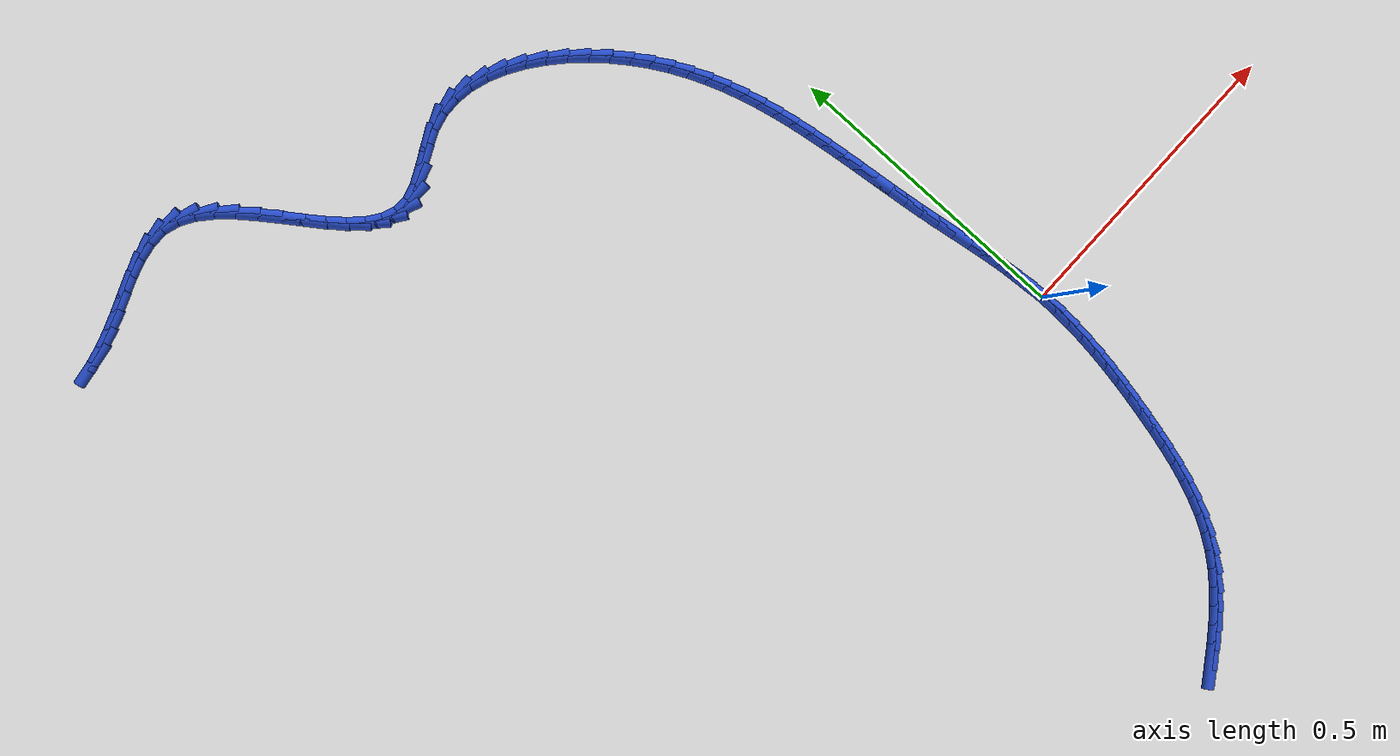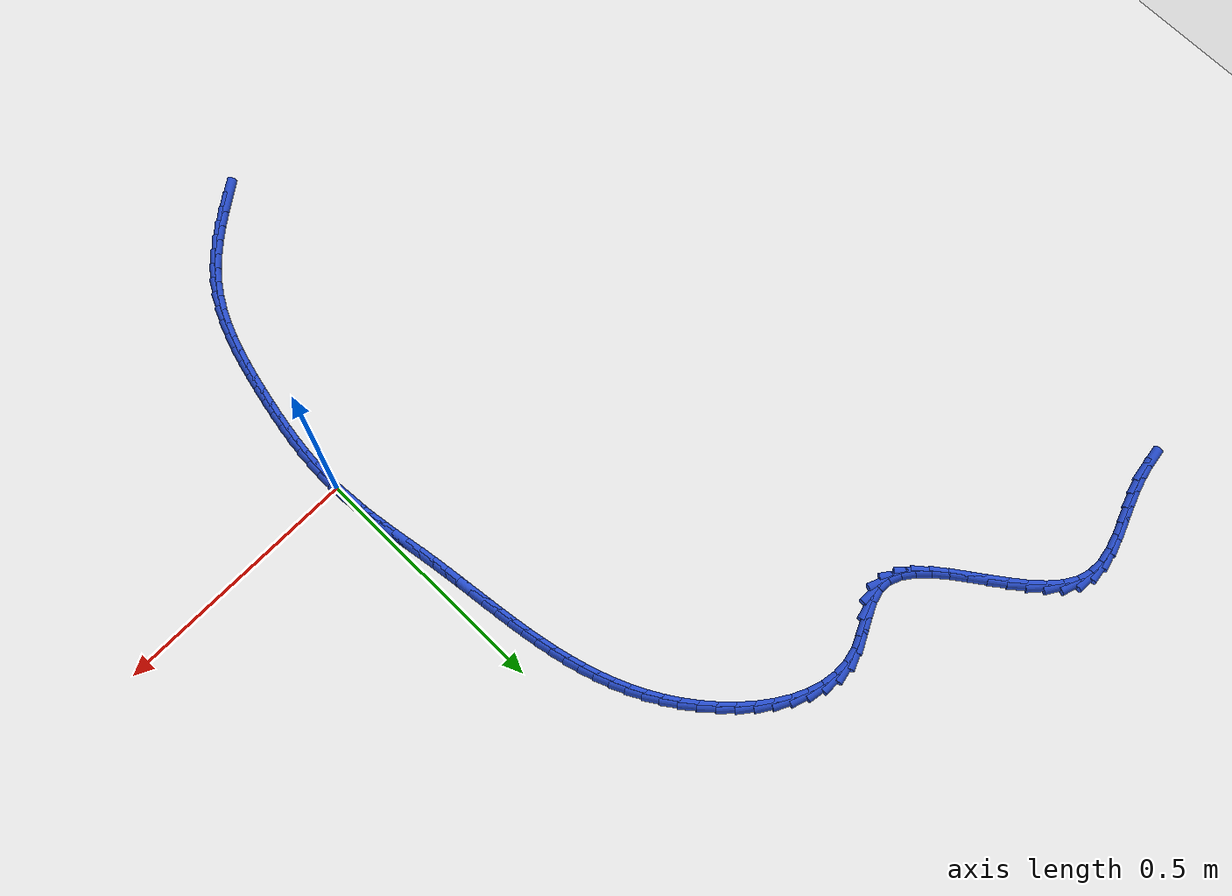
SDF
<sdf version="1.6">
 <world name="default">
  <model name="ground_plane">
   <static>1</static>
   <link name="link">
    <collision name="collision">
     <geometry><plane><normal>0 0 1</normal><size>100 100</size></plane></geometry>
     <surface><friction><ode><mu>100</mu><mu2>50</mu2></ode></friction></surface>
    </collision>
    <visual name="visual">
     <cast_shadows>0</cast_shadows>
     <geometry><plane><normal>0 0 1</normal><size>100 100</size></plane></geometry>
     <material>
      <script><uri>file://media/materials/scripts/gazebo.material</uri><name>Gazebo/WhiteGlow</name></script>
     </material>
    </visual>
   </link>
  </model>
  <model name="line">
   <link name="link_0">
    <pose>-1.0408340855860843e-17 6.938893903907228e-18 0.01 0 1.57 -1.5288406629812028</pose>
    <collision name="collision">
     <geometry><cylinder><radius>0.01</radius><length>0.08</length></cylinder></geometry>
    </collision>
    <visual name="visual">
     <material>
      <script><name>Gazebo/Blue</name><uri>file://media/materials/scripts/gazebo.material</uri></script>
     </material>
     <geometry><cylinder><radius>0.01</radius><length>0.08</length></cylinder></geometry>
    </visual>
   </link>
   <link name="link_1">
    <pose>-0.0012697383187508027 0.030246052267149492 0.01 0 1.57 -1.4904389282044184</pose>
    <collision name="collision">
     <geometry><cylinder><radius>0.01</radius><length>0.08</length></cylinder></geometry>
    </collision>
    <visual name="visual">
     <material>
      <script><name>Gazebo/Blue</name><uri>file://media/materials/scripts/gazebo.material</uri></script>
     </material>
     <geometry><cylinder><radius>0.01</radius><length>0.08</length></cylinder></geometry>
    </visual>
   </link>
   <link name="link_2">
    <pose>-0.0037061450180958543 0.060500394377433826 0.01 0 1.57 -1.460066926359033</pose>
    <collision name="collision">
     <geometry><cylinder><radius>0.01</radius><length>0.08</length></cylinder></geometry>
    </collision>
    <visual name="visual">
     <material>
      <script><name>Gazebo/Blue</name><uri>file://media/materials/scripts/gazebo.material</uri></script>
     </material>
     <geometry><cylinder><radius>0.01</radius><length>0.08</length></cylinder></geometry>
    </visual>
   </link>
   <link name="link_3">
    <pose>-0.007071921407302899 0.09077247379385227 0.01 0 1.57 -1.4376629101199128</pose>
    <collision name="collision">
     <geometry><cylinder><radius>0.01</radius><length>0.08</length></cylinder></geometry>
    </collision>
    <visual name="visual">
     <material>
      <script><name>Gazebo/Blue</name><uri>file://media/materials/scripts/gazebo.material</uri></script>
     </material>
     <geometry><cylinder><radius>0.01</radius><length>0.08</length></cylinder></geometry>
    </visual>
   </link>
   <link name="link_4">
    <pose>-0.011129768795639691 0.12107173797940407 0.01 0 1.57 -1.423124094457603</pose>
    <collision name="collision">
     <geometry><cylinder><radius>0.01</radius><length>0.08</length></cylinder></geometry>
    </collision>
    <visual name="visual">
     <material>
      <script><name>Gazebo/Blue</name><uri>file://media/materials/scripts/gazebo.material</uri></script>
     </material>
     <geometry><cylinder><radius>0.01</radius><length>0.08</length></cylinder></geometry>
    </visual>
   </link>
   <link name="link_5">
    <pose>-0.015642388492373968 0.1514076343970886 0.01 0 1.57 -1.4163487453188346</pose>
    <collision name="collision">
     <geometry><cylinder><radius>0.01</radius><length>0.08</length></cylinder></geometry>
    </collision>
    <visual name="visual">
     <material>
      <script><name>Gazebo/Blue</name><uri>file://media/materials/scripts/gazebo.material</uri></script>
     </material>
     <geometry><cylinder><radius>0.01</radius><length>0.08</length></cylinder></geometry>
    </visual>
   </link>
   <link name="link_6">
    <pose>-0.020372481806773472 0.18178961050990505 0.01 0 1.57 -1.4172620975042012</pose>
    <collision name="collision">
     <geometry><cylinder><radius>0.01</radius><length>0.08</length></cylinder></geometry>
    </collision>
    <visual name="visual">
     <material>
      <script><name>Gazebo/Blue</name><uri>file://media/materials/scripts/gazebo.material</uri></script>
     </material>
     <geometry><cylinder><radius>0.01</radius><length>0.08</length></cylinder></geometry>
    </visual>
   </link>
   <link name="link_7">
    <pose>-0.025082750048105968 0.21222711378085282 0.01 0 1.57 -1.4258246507885837</pose>
    <collision name="collision">
     <geometry><cylinder><radius>0.01</radius><length>0.08</length></cylinder></geometry>
    </collision>
    <visual name="visual">
     <material>
      <script><name>Gazebo/Blue</name><uri>file://media/materials/scripts/gazebo.material</uri></script>
     </material>
     <geometry><cylinder><radius>0.01</radius><length>0.08</length></cylinder></geometry>
    </visual>
   </link>
   <link name="link_8">
    <pose>-0.02953598532157262 0.24272958178424622 0.01 0 1.57 -1.4391357886574705</pose>
    <collision name="collision">
     <geometry><cylinder><radius>0.01</radius><length>0.08</length></cylinder></geometry>
    </collision>
    <visual name="visual">
     <material>
      <script><name>Gazebo/Blue</name><uri>file://media/materials/scripts/gazebo.material</uri></script>
     </material>
     <geometry><cylinder><radius>0.01</radius><length>0.08</length></cylinder></geometry>
    </visual>
   </link>
   <link name="link_9">
    <pose>-0.033583894114097276 0.27329676833136585 0.01 0 1.57 -1.448885582735926</pose>
    <collision name="collision">
     <geometry><cylinder><radius>0.01</radius><length>0.08</length></cylinder></geometry>
    </collision>
    <visual name="visual">
     <material>
      <script><name>Gazebo/Blue</name><uri>file://media/materials/scripts/gazebo.material</uri></script>
     </material>
     <geometry><cylinder><radius>0.01</radius><length>0.08</length></cylinder></geometry>
    </visual>
   </link>
   <link name="link_10">
    <pose>-0.03733342735707603 0.3039006282805217 0.01 0 1.57 -1.4535992924206598</pose>
    <collision name="collision">
     <geometry><cylinder><radius>0.01</radius><length>0.08</length></cylinder></geometry>
    </collision>
    <visual name="visual">
     <material>
      <script><name>Gazebo/Blue</name><uri>file://media/materials/scripts/gazebo.material</uri></script>
     </material>
     <geometry><cylinder><radius>0.01</radius><length>0.08</length></cylinder></geometry>
    </visual>
   </link>
   <link name="link_11">
    <pose>-0.04093705310805319 0.3345081591697896 0.01 0 1.57 -1.4532762953830685</pose>
    <collision name="collision">
     <geometry><cylinder><radius>0.01</radius><length>0.08</length></cylinder></geometry>
    </collision>
    <visual name="visual">
     <material>
      <script><name>Gazebo/Blue</name><uri>file://media/materials/scripts/gazebo.material</uri></script>
     </material>
     <geometry><cylinder><radius>0.01</radius><length>0.08</length></cylinder></geometry>
    </visual>
   </link>
   <link name="link_12">
    <pose>-0.04454723942457301 0.36508635853724547 0.01 0 1.57 -1.447902208614132</pose>
    <collision name="collision">
     <geometry><cylinder><radius>0.01</radius><length>0.08</length></cylinder></geometry>
    </collision>
    <visual name="visual">
     <material>
      <script><name>Gazebo/Blue</name><uri>file://media/materials/scripts/gazebo.material</uri></script>
     </material>
     <geometry><cylinder><radius>0.01</radius><length>0.08</length></cylinder></geometry>
    </visual>
   </link>
   <link name="link_13">
    <pose>-0.048316454364179806 0.39560222392096533 0.01 0 1.57 -1.4374490125082795</pose>
    <collision name="collision">
     <geometry><cylinder><radius>0.01</radius><length>0.08</length></cylinder></geometry>
    </collision>
    <visual name="visual">
     <material>
      <script><name>Gazebo/Blue</name><uri>file://media/materials/scripts/gazebo.material</uri></script>
     </material>
     <geometry><cylinder><radius>0.01</radius><length>0.08</length></cylinder></geometry>
    </visual>
   </link>
   <link name="link_14">
    <pose>-0.052397165984417855 0.4260227528590252 0.01 0 1.57 -1.4218790060074933</pose>
    <collision name="collision">
     <geometry><cylinder><radius>0.01</radius><length>0.08</length></cylinder></geometry>
    </collision>
    <visual name="visual">
     <material>
      <script><name>Gazebo/Blue</name><uri>file://media/materials/scripts/gazebo.material</uri></script>
     </material>
     <geometry><cylinder><radius>0.01</radius><length>0.08</length></cylinder></geometry>
    </visual>
   </link>
   <link name="link_15">
    <pose>-0.05694184234283144 0.45631494288950075 0.01 0 1.57 -1.4011527974822453</pose>
    <collision name="collision">
     <geometry><cylinder><radius>0.01</radius><length>0.08</length></cylinder></geometry>
    </collision>
    <visual name="visual">
     <material>
      <script><name>Gazebo/Blue</name><uri>file://media/materials/scripts/gazebo.material</uri></script>
     </material>
     <geometry><cylinder><radius>0.01</radius><length>0.08</length></cylinder></geometry>
    </visual>
   </link>
   <link name="link_16">
    <pose>-0.06210295149696489 0.48644579155046824 0.01 0 1.57 -1.3752415856845936</pose>
    <collision name="collision">
     <geometry><cylinder><radius>0.01</radius><length>0.08</length></cylinder></geometry>
    </collision>
    <visual name="visual">
     <material>
      <script><name>Gazebo/Blue</name><uri>file://media/materials/scripts/gazebo.material</uri></script>
     </material>
     <geometry><cylinder><radius>0.01</radius><length>0.08</length></cylinder></geometry>
    </visual>
   </link>
   <link name="link_17">
    <pose>-0.06803296150436246 0.5163822963800035 0.01 0 1.57 -1.344143874009349</pose>
    <collision name="collision">
     <geometry><cylinder><radius>0.01</radius><length>0.08</length></cylinder></geometry>
    </collision>
    <visual name="visual">
     <material>
      <script><name>Gazebo/Blue</name><uri>file://media/materials/scripts/gazebo.material</uri></script>
     </material>
     <geometry><cylinder><radius>0.01</radius><length>0.08</length></cylinder></geometry>
    </visual>
   </link>
   <link name="link_18">
    <pose>-0.07488434042256846 0.5460914549161826 0.01 0 1.57 -1.307906394334803</pose>
    <collision name="collision">
     <geometry><cylinder><radius>0.01</radius><length>0.08</length></cylinder></geometry>
    </collision>
    <visual name="visual">
     <material>
      <script><name>Gazebo/Blue</name><uri>file://media/materials/scripts/gazebo.material</uri></script>
     </material>
     <geometry><cylinder><radius>0.01</radius><length>0.08</length></cylinder></geometry>
    </visual>
   </link>
   <link name="link_19">
    <pose>-0.08280955630912715 0.5755402646970813 0.01 0 1.57 -1.2666483099060637</pose>
    <collision name="collision">
     <geometry><cylinder><radius>0.01</radius><length>0.08</length></cylinder></geometry>
    </collision>
    <visual name="visual">
     <material>
      <script><name>Gazebo/Blue</name><uri>file://media/materials/scripts/gazebo.material</uri></script>
     </material>
     <geometry><cylinder><radius>0.01</radius><length>0.08</length></cylinder></geometry>
    </visual>
   </link>
   <link name="link_20">
    <pose>-0.09196107722158287 0.6046957232607757 0.01 0 1.57 -1.2205866968133137</pose>
    <collision name="collision">
     <geometry><cylinder><radius>0.01</radius><length>0.08</length></cylinder></geometry>
    </collision>
    <visual name="visual">
     <material>
      <script><name>Gazebo/Blue</name><uri>file://media/materials/scripts/gazebo.material</uri></script>
     </material>
     <geometry><cylinder><radius>0.01</radius><length>0.08</length></cylinder></geometry>
    </visual>
   </link>
   <link name="link_21">
    <pose>-0.10249137121747984 0.6335248281453415 0.01 0 1.57 -1.170059986261889</pose>
    <collision name="collision">
     <geometry><cylinder><radius>0.01</radius><length>0.08</length></cylinder></geometry>
    </collision>
    <visual name="visual">
     <material>
      <script><name>Gazebo/Blue</name><uri>file://media/materials/scripts/gazebo.material</uri></script>
     </material>
     <geometry><cylinder><radius>0.01</radius><length>0.08</length></cylinder></geometry>
    </visual>
   </link>
   <link name="link_22">
    <pose>-0.11455290635436238 0.6619945768888549 0.01 0 1.57 -1.1155448189650945</pose>
    <collision name="collision">
     <geometry><cylinder><radius>0.01</radius><length>0.08</length></cylinder></geometry>
    </collision>
    <visual name="visual">
     <material>
      <script><name>Gazebo/Blue</name><uri>file://media/materials/scripts/gazebo.material</uri></script>
     </material>
     <geometry><cylinder><radius>0.01</radius><length>0.08</length></cylinder></geometry>
    </visual>
   </link>
   <link name="link_23">
    <pose>-0.12829815068977485 0.6900719670293918 0.01 0 1.57 -1.057661183271682</pose>
    <collision name="collision">
     <geometry><cylinder><radius>0.01</radius><length>0.08</length></cylinder></geometry>
    </collision>
    <visual name="visual">
     <material>
      <script><name>Gazebo/Blue</name><uri>file://media/materials/scripts/gazebo.material</uri></script>
     </material>
     <geometry><cylinder><radius>0.01</radius><length>0.08</length></cylinder></geometry>
    </visual>
   </link>
   <link name="link_24">
    <pose>-0.14387957228126144 0.7177239961050281 0.01 0 1.57 -0.9971614300220978</pose>
    <collision name="collision">
     <geometry><cylinder><radius>0.01</radius><length>0.08</length></cylinder></geometry>
    </collision>
    <visual name="visual">
     <material>
      <script><name>Gazebo/Blue</name><uri>file://media/materials/scripts/gazebo.material</uri></script>
     </material>
     <geometry><cylinder><radius>0.01</radius><length>0.08</length></cylinder></geometry>
    </visual>
   </link>
   <link name="link_25">
    <pose>-0.16144963918636657 0.74491766165384 0.01 0 1.57 -0.934901107599358</pose>
    <collision name="collision">
     <geometry><cylinder><radius>0.01</radius><length>0.08</length></cylinder></geometry>
    </collision>
    <visual name="visual">
     <material>
      <script><name>Gazebo/Blue</name><uri>file://media/materials/scripts/gazebo.material</uri></script>
     </material>
     <geometry><cylinder><radius>0.01</radius><length>0.08</length></cylinder></geometry>
    </visual>
   </link>
   <link name="link_26">
    <pose>-0.18116053510137523 0.771619572263694 0.01 0 1.57 -0.8714266778772993</pose>
    <collision name="collision">
     <geometry><cylinder><radius>0.01</radius><length>0.08</length></cylinder></geometry>
    </collision>
    <visual name="visual">
     <material>
      <script><name>Gazebo/Blue</name><uri>file://media/materials/scripts/gazebo.material</uri></script>
     </material>
     <geometry><cylinder><radius>0.01</radius><length>0.08</length></cylinder></geometry>
    </visual>
   </link>
   <link name="link_27">
    <pose>-0.20305632550004468 0.7976484520836367 0.01 0 1.57 -0.8049261668410274</pose>
    <collision name="collision">
     <geometry><cylinder><radius>0.01</radius><length>0.08</length></cylinder></geometry>
    </collision>
    <visual name="visual">
     <material>
      <script><name>Gazebo/Blue</name><uri>file://media/materials/scripts/gazebo.material</uri></script>
     </material>
     <geometry><cylinder><radius>0.01</radius><length>0.08</length></cylinder></geometry>
    </visual>
   </link>
   <link name="link_28">
    <pose>-0.22691057141191293 0.8224530284481458 0.01 0 1.57 -0.7324234035653472</pose>
    <collision name="collision">
     <geometry><cylinder><radius>0.01</radius><length>0.08</length></cylinder></geometry>
    </collision>
    <visual name="visual">
     <material>
      <script><name>Gazebo/Blue</name><uri>file://media/materials/scripts/gazebo.material</uri></script>
     </material>
     <geometry><cylinder><radius>0.01</radius><length>0.08</length></cylinder></geometry>
    </visual>
   </link>
   <link name="link_29">
    <pose>-0.25245521777194213 0.8454251060689605 0.01 0 1.57 -0.6507271356398364</pose>
    <collision name="collision">
     <geometry><cylinder><radius>0.01</radius><length>0.08</length></cylinder></geometry>
    </collision>
    <visual name="visual">
     <material>
      <script><name>Gazebo/Blue</name><uri>file://media/materials/scripts/gazebo.material</uri></script>
     </material>
     <geometry><cylinder><radius>0.01</radius><length>0.08</length></cylinder></geometry>
    </visual>
   </link>
   <link name="link_30">
    <pose>-0.27942220951509394 0.8659564896578174 0.01 0 1.57 -0.5562097634579346</pose>
    <collision name="collision">
     <geometry><cylinder><radius>0.01</radius><length>0.08</length></cylinder></geometry>
    </collision>
    <visual name="visual">
     <material>
      <script><name>Gazebo/Blue</name><uri>file://media/materials/scripts/gazebo.material</uri></script>
     </material>
     <geometry><cylinder><radius>0.01</radius><length>0.08</length></cylinder></geometry>
    </visual>
   </link>
   <link name="link_31">
    <pose>-0.3075434915763307 0.8834389839264558 0.01 0 1.57 -0.44476497598986847</pose>
    <collision name="collision">
     <geometry><cylinder><radius>0.01</radius><length>0.08</length></cylinder></geometry>
    </collision>
    <visual name="visual">
     <material>
      <script><name>Gazebo/Blue</name><uri>file://media/materials/scripts/gazebo.material</uri></script>
     </material>
     <geometry><cylinder><radius>0.01</radius><length>0.08</length></cylinder></geometry>
    </visual>
   </link>
   <link name="link_32">
    <pose>-0.33655100889061407 0.8972643935866135 0.01 0 1.57 -0.312147691446262</pose>
    <collision name="collision">
     <geometry><cylinder><radius>0.01</radius><length>0.08</length></cylinder></geometry>
    </collision>
    <visual name="visual">
     <material>
      <script><name>Gazebo/Blue</name><uri>file://media/materials/scripts/gazebo.material</uri></script>
     </material>
     <geometry><cylinder><radius>0.01</radius><length>0.08</length></cylinder></geometry>
    </visual>
   </link>
   <link name="link_33">
    <pose>-0.3661767063929058 0.9068245233500281 0.01 0 1.57 -0.1550922311277548</pose>
    <collision name="collision">
     <geometry><cylinder><radius>0.01</radius><length>0.08</length></cylinder></geometry>
    </collision>
    <visual name="visual">
     <material>
      <script><name>Gazebo/Blue</name><uri>file://media/materials/scripts/gazebo.material</uri></script>
     </material>
     <geometry><cylinder><radius>0.01</radius><length>0.08</length></cylinder></geometry>
    </visual>
   </link>
   <link name="link_34">
    <pose>-0.39615252901816855 0.9115111779284383 0.01 0 1.57 0.02644332354930902</pose>
    <collision name="collision">
     <geometry><cylinder><radius>0.01</radius><length>0.08</length></cylinder></geometry>
    </collision>
    <visual name="visual">
     <material>
      <script><name>Gazebo/Blue</name><uri>file://media/materials/scripts/gazebo.material</uri></script>
     </material>
     <geometry><cylinder><radius>0.01</radius><length>0.08</length></cylinder></geometry>
    </visual>
   </link>
   <link name="link_35">
    <pose>-0.4262104217013638 0.910716162033582 0.01 0 1.57 0.22651418509251897</pose>
    <collision name="collision">
     <geometry><cylinder><radius>0.01</radius><length>0.08</length></cylinder></geometry>
    </collision>
    <visual name="visual">
     <material>
      <script><name>Gazebo/Blue</name><uri>file://media/materials/scripts/gazebo.material</uri></script>
     </material>
     <geometry><cylinder><radius>0.01</radius><length>0.08</length></cylinder></geometry>
    </visual>
   </link>
   <link name="link_36">
    <pose>-0.4560823281969345 0.9038316008324213 0.01 0 1.57 0.4054170350140008</pose>
    <collision name="collision">
     <geometry><cylinder><radius>0.01</radius><length>0.08</length></cylinder></geometry>
    </collision>
    <visual name="visual">
     <material>
      <script><name>Gazebo/Blue</name><uri>file://media/materials/scripts/gazebo.material</uri></script>
     </material>
     <geometry><cylinder><radius>0.01</radius><length>0.08</length></cylinder></geometry>
    </visual>
   </link>
   <link name="link_37">
    <pose>-0.48549666477637 0.8912071648956826 0.01 0 1.57 0.480564120621605</pose>
    <collision name="collision">
     <geometry><cylinder><radius>0.01</radius><length>0.08</length></cylinder></geometry>
    </collision>
    <visual name="visual">
     <material>
      <script><name>Gazebo/Blue</name><uri>file://media/materials/scripts/gazebo.material</uri></script>
     </material>
     <geometry><cylinder><radius>0.01</radius><length>0.08</length></cylinder></geometry>
    </visual>
   </link>
   <link name="link_38">
    <pose>-0.5141705524265512 0.8762586623208147 0.01 0 1.57 0.44673008761916644</pose>
    <collision name="collision">
     <geometry><cylinder><radius>0.01</radius><length>0.08</length></cylinder></geometry>
    </collision>
    <visual name="visual">
     <material>
      <script><name>Gazebo/Blue</name><uri>file://media/materials/scripts/gazebo.material</uri></script>
     </material>
     <geometry><cylinder><radius>0.01</radius><length>0.08</length></cylinder></geometry>
    </visual>
   </link>
   <link name="link_39">
    <pose>-0.5418188559932757 0.8630143371979422 0.01 0 1.57 0.27783956915048397</pose>
    <collision name="collision">
     <geometry><cylinder><radius>0.01</radius><length>0.08</length></cylinder></geometry>
    </collision>
    <visual name="visual">
     <material>
      <script><name>Gazebo/Blue</name><uri>file://media/materials/scripts/gazebo.material</uri></script>
     </material>
     <geometry><cylinder><radius>0.01</radius><length>0.08</length></cylinder></geometry>
    </visual>
   </link>
   <link name="link_40">
    <pose>-0.5681564419460365 0.8555024177707181 0.01 0 1.57 -0.05122189092899435</pose>
    <collision name="collision">
     <geometry><cylinder><radius>0.01</radius><length>0.08</length></cylinder></geometry>
    </collision>
    <visual name="visual">
     <material>
      <script><name>Gazebo/Blue</name><uri>file://media/materials/scripts/gazebo.material</uri></script>
     </material>
     <geometry><cylinder><radius>0.01</radius><length>0.08</length></cylinder></geometry>
    </visual>
   </link>
   <link name="link_41">
    <pose>-0.592998096170735 0.8567759682659938 0.01 0 1.57 -0.38386000757929223</pose>
    <collision name="collision">
     <geometry><cylinder><radius>0.01</radius><length>0.08</length></cylinder></geometry>
    </collision>
    <visual name="visual">
     <material>
      <script><name>Gazebo/Blue</name><uri>file://media/materials/scripts/gazebo.material</uri></script>
     </material>
     <geometry><cylinder><radius>0.01</radius><length>0.08</length></cylinder></geometry>
    </visual>
   </link>
   <link name="link_42">
    <pose>-0.616528329309562 0.8662797224036753 0.01 0 1.57 -0.6284700232140525</pose>
    <collision name="collision">
     <geometry><cylinder><radius>0.01</radius><length>0.08</length></cylinder></geometry>
    </collision>
    <visual name="visual">
     <material>
      <script><name>Gazebo/Blue</name><uri>file://media/materials/scripts/gazebo.material</uri></script>
     </material>
     <geometry><cylinder><radius>0.01</radius><length>0.08</length></cylinder></geometry>
    </visual>
   </link>
   <link name="link_43">
    <pose>-0.6390171483731505 0.882624011691677 0.01 0 1.57 -0.787184862463879</pose>
    <collision name="collision">
     <geometry><cylinder><radius>0.01</radius><length>0.08</length></cylinder></geometry>
    </collision>
    <visual name="visual">
     <material>
      <script><name>Gazebo/Blue</name><uri>file://media/materials/scripts/gazebo.material</uri></script>
     </material>
     <geometry><cylinder><radius>0.01</radius><length>0.08</length></cylinder></geometry>
    </visual>
   </link>
   <link name="link_44">
    <pose>-0.6607345603721327 0.9044191676379122 0.01 0 1.57 -0.883659591239229</pose>
    <collision name="collision">
     <geometry><cylinder><radius>0.01</radius><length>0.08</length></cylinder></geometry>
    </collision>
    <visual name="visual">
     <material>
      <script><name>Gazebo/Blue</name><uri>file://media/materials/scripts/gazebo.material</uri></script>
     </material>
     <geometry><cylinder><radius>0.01</radius><length>0.08</length></cylinder></geometry>
    </visual>
   </link>
   <link name="link_45">
    <pose>-0.6819505723171412 0.9302755217502945 0.01 0 1.57 -0.936586296262233</pose>
    <collision name="collision">
     <geometry><cylinder><radius>0.01</radius><length>0.08</length></cylinder></geometry>
    </collision>
    <visual name="visual">
     <material>
      <script><name>Gazebo/Blue</name><uri>file://media/materials/scripts/gazebo.material</uri></script>
     </material>
     <geometry><cylinder><radius>0.01</radius><length>0.08</length></cylinder></geometry>
    </visual>
   </link>
   <link name="link_46">
    <pose>-0.7029351912188082 0.9588034055367384 0.01 0 1.57 -0.9565575671919775</pose>
    <collision name="collision">
     <geometry><cylinder><radius>0.01</radius><length>0.08</length></cylinder></geometry>
    </collision>
    <visual name="visual">
     <material>
      <script><name>Gazebo/Blue</name><uri>file://media/materials/scripts/gazebo.material</uri></script>
     </material>
     <geometry><cylinder><radius>0.01</radius><length>0.08</length></cylinder></geometry>
    </visual>
   </link>
   <link name="link_47">
    <pose>-0.7239584240877663 0.9886131505051574 0.01 0 1.57 -0.9479614718937222</pose>
    <collision name="collision">
     <geometry><cylinder><radius>0.01</radius><length>0.08</length></cylinder></geometry>
    </collision>
    <visual name="visual">
     <material>
      <script><name>Gazebo/Blue</name><uri>file://media/materials/scripts/gazebo.material</uri></script>
     </material>
     <geometry><cylinder><radius>0.01</radius><length>0.08</length></cylinder></geometry>
    </visual>
   </link>
   <link name="link_48">
    <pose>-0.745290277934648 1.018315088163465 0.01 0 1.57 -0.9103349078859827</pose>
    <collision name="collision">
     <geometry><cylinder><radius>0.01</radius><length>0.08</length></cylinder></geometry>
    </collision>
    <visual name="visual">
     <material>
      <script><name>Gazebo/Blue</name><uri>file://media/materials/scripts/gazebo.material</uri></script>
     </material>
     <geometry><cylinder><radius>0.01</radius><length>0.08</length></cylinder></geometry>
    </visual>
   </link>
   <link name="link_49">
    <pose>-0.7672007597700857 1.0465195500195752 0.01 0 1.57 -0.8385591434796962</pose>
    <collision name="collision">
     <geometry><cylinder><radius>0.01</radius><length>0.08</length></cylinder></geometry>
    </collision>
    <visual name="visual">
     <material>
      <script><name>Gazebo/Blue</name><uri>file://media/materials/scripts/gazebo.material</uri></script>
     </material>
     <geometry><cylinder><radius>0.01</radius><length>0.08</length></cylinder></geometry>
    </visual>
   </link>
   <link name="link_50">
    <pose>-0.789959876604712 1.0718368675814023 0.01 0 1.57 -0.7223171470292652</pose>
    <collision name="collision">
     <geometry><cylinder><radius>0.01</radius><length>0.08</length></cylinder></geometry>
    </collision>
    <visual name="visual">
     <material>
      <script><name>Gazebo/Blue</name><uri>file://media/materials/scripts/gazebo.material</uri></script>
     </material>
     <geometry><cylinder><radius>0.01</radius><length>0.08</length></cylinder></geometry>
    </visual>
   </link>
   <link name="link_51">
    <pose>-0.8138376354491592 1.0928773723568592 0.01 0 1.57 -0.54662915295404</pose>
    <collision name="collision">
     <geometry><cylinder><radius>0.01</radius><length>0.08</length></cylinder></geometry>
    </collision>
    <visual name="visual">
     <material>
      <script><name>Gazebo/Blue</name><uri>file://media/materials/scripts/gazebo.material</uri></script>
     </material>
     <geometry><cylinder><radius>0.01</radius><length>0.08</length></cylinder></geometry>
    </visual>
   </link>
   <link name="link_52">
    <pose>-0.8391040433140595 1.1082513958538602 0.01 0 1.57 -0.29992006252335646</pose>
    <collision name="collision">
     <geometry><cylinder><radius>0.01</radius><length>0.08</length></cylinder></geometry>
    </collision>
    <visual name="visual">
     <material>
      <script><name>Gazebo/Blue</name><uri>file://media/materials/scripts/gazebo.material</uri></script>
     </material>
     <geometry><cylinder><radius>0.01</radius><length>0.08</length></cylinder></geometry>
    </visual>
   </link>
   <link name="link_53">
    <pose>-0.8660270476735114 1.1165772990143359 0.01 0 1.57 -0.03115331940229374</pose>
    <collision name="collision">
     <geometry><cylinder><radius>0.01</radius><length>0.08</length></cylinder></geometry>
    </collision>
    <visual name="visual">
     <material>
      <script><name>Gazebo/Blue</name><uri>file://media/materials/scripts/gazebo.material</uri></script>
     </material>
     <geometry><cylinder><radius>0.01</radius><length>0.08</length></cylinder></geometry>
    </visual>
   </link>
   <link name="link_54">
    <pose>-0.8946194079927946 1.1174683342250766 0.01 0 1.57 0.16590258207798814</pose>
    <collision name="collision">
     <geometry><cylinder><radius>0.01</radius><length>0.08</length></cylinder></geometry>
    </collision>
    <visual name="visual">
     <material>
      <script><name>Gazebo/Blue</name><uri>file://media/materials/scripts/gazebo.material</uri></script>
     </material>
     <geometry><cylinder><radius>0.01</radius><length>0.08</length></cylinder></geometry>
    </visual>
   </link>
   <link name="link_55">
    <pose>-0.9243950190607217 1.112482657949913 0.01 0 1.57 0.2900837668800088</pose>
    <collision name="collision">
     <geometry><cylinder><radius>0.01</radius><length>0.08</length></cylinder></geometry>
    </collision>
    <visual name="visual">
     <material>
      <script><name>Gazebo/Blue</name><uri>file://media/materials/scripts/gazebo.material</uri></script>
     </material>
     <geometry><cylinder><radius>0.01</radius><length>0.08</length></cylinder></geometry>
    </visual>
   </link>
   <link name="link_56">
    <pose>-0.9548100028749165 1.1034036631595348 0.01 0 1.57 0.35726097831734493</pose>
    <collision name="collision">
     <geometry><cylinder><radius>0.01</radius><length>0.08</length></cylinder></geometry>
    </collision>
    <visual name="visual">
     <material>
      <script><name>Gazebo/Blue</name><uri>file://media/materials/scripts/gazebo.material</uri></script>
     </material>
     <geometry><cylinder><radius>0.01</radius><length>0.08</length></cylinder></geometry>
    </visual>
   </link>
   <link name="link_57">
    <pose>-0.9853204814330031 1.0920147428246325 0.01 0 1.57 0.37736568619807154</pose>
    <collision name="collision">
     <geometry><cylinder><radius>0.01</radius><length>0.08</length></cylinder></geometry>
    </collision>
    <visual name="visual">
     <material>
      <script><name>Gazebo/Blue</name><uri>file://media/materials/scripts/gazebo.material</uri></script>
     </material>
     <geometry><cylinder><radius>0.01</radius><length>0.08</length></cylinder></geometry>
    </visual>
   </link>
   <link name="link_58">
    <pose>-1.0153825767326066 1.0800992899158959 0.01 0 1.57 0.3526654235209021</pose>
    <collision name="collision">
     <geometry><cylinder><radius>0.01</radius><length>0.08</length></cylinder></geometry>
    </collision>
    <visual name="visual">
     <material>
      <script><name>Gazebo/Blue</name><uri>file://media/materials/scripts/gazebo.material</uri></script>
     </material>
     <geometry><cylinder><radius>0.01</radius><length>0.08</length></cylinder></geometry>
    </visual>
   </link>
   <link name="link_59">
    <pose>-1.0444818400322136 1.0693892471683886 0.01 0 1.57 0.29883495750355027</pose>
    <collision name="collision">
     <geometry><cylinder><radius>0.01</radius><length>0.08</length></cylinder></geometry>
    </collision>
    <visual name="visual">
     <material>
      <script><name>Gazebo/Blue</name><uri>file://media/materials/scripts/gazebo.material</uri></script>
     </material>
     <geometry><cylinder><radius>0.01</radius><length>0.08</length></cylinder></geometry>
    </visual>
   </link>
   <link name="link_60">
    <pose>-1.0726152371105215 1.060722467666409 0.01 0 1.57 0.23280434635918168</pose>
    <collision name="collision">
     <geometry><cylinder><radius>0.01</radius><length>0.08</length></cylinder></geometry>
    </collision>
    <visual name="visual">
     <material>
      <script><name>Gazebo/Blue</name><uri>file://media/materials/scripts/gazebo.material</uri></script>
     </material>
     <geometry><cylinder><radius>0.01</radius><length>0.08</length></cylinder></geometry>
    </visual>
   </link>
   <link name="link_61">
    <pose>-1.1002132612494266 1.0541788822245142 0.01 0 1.57 0.1573557138279378</pose>
    <collision name="collision">
     <geometry><cylinder><radius>0.01</radius><length>0.08</length></cylinder></geometry>
    </collision>
    <visual name="visual">
     <material>
      <script><name>Gazebo/Blue</name><uri>file://media/materials/scripts/gazebo.material</uri></script>
     </material>
     <geometry><cylinder><radius>0.01</radius><length>0.08</length></cylinder></geometry>
    </visual>
   </link>
   <link name="link_238">
    <pose>-0.25460673579065346 -0.5927459274689979 0.01 0 1.57 0.6147147953487377</pose>
    <collision name="collision">
     <geometry><cylinder><radius>0.01</radius><length>0.08</length></cylinder></geometry>
    </collision>
    <visual name="visual">
     <material>
      <script><name>Gazebo/Blue</name><uri>file://media/materials/scripts/gazebo.material</uri></script>
     </material>
     <geometry><cylinder><radius>0.01</radius><length>0.08</length></cylinder></geometry>
    </visual>
   </link>
   <link name="link_239">
    <pose>-0.22885023888298683 -0.5745628701077052 0.01 0 1.57 0.6482722808978527</pose>
    <collision name="collision">
     <geometry><cylinder><radius>0.01</radius><length>0.08</length></cylinder></geometry>
    </collision>
    <visual name="visual">
     <material>
      <script><name>Gazebo/Blue</name><uri>file://media/materials/scripts/gazebo.material</uri></script>
     </material>
     <geometry><cylinder><radius>0.01</radius><length>0.08</length></cylinder></geometry>
    </visual>
   </link>
   <link name="link_240">
    <pose>-0.20398136563737843 -0.5557251515895089 0.01 0 1.57 0.6923395517847134</pose>
    <collision name="collision">
     <geometry><cylinder><radius>0.01</radius><length>0.08</length></cylinder></geometry>
    </collision>
    <visual name="visual">
     <material>
      <script><name>Gazebo/Blue</name><uri>file://media/materials/scripts/gazebo.material</uri></script>
     </material>
     <geometry><cylinder><radius>0.01</radius><length>0.08</length></cylinder></geometry>
    </visual>
   </link>
   <link name="link_241">
    <pose>-0.18025388892977662 -0.5360485025773308 0.01 0 1.57 0.7474805648086447</pose>
    <collision name="collision">
     <geometry><cylinder><radius>0.01</radius><length>0.08</length></cylinder></geometry>
    </collision>
    <visual name="visual">
     <material>
      <script><name>Gazebo/Blue</name><uri>file://media/materials/scripts/gazebo.material</uri></script>
     </material>
     <geometry><cylinder><radius>0.01</radius><length>0.08</length></cylinder></geometry>
    </visual>
   </link>
   <link name="link_242">
    <pose>-0.15792158163612943 -0.5153486537340926 0.01 0 1.57 0.8141278327686463</pose>
    <collision name="collision">
     <geometry><cylinder><radius>0.01</radius><length>0.08</length></cylinder></geometry>
    </collision>
    <visual name="visual">
     <material>
      <script><name>Gazebo/Blue</name><uri>file://media/materials/scripts/gazebo.material</uri></script>
     </material>
     <geometry><cylinder><radius>0.01</radius><length>0.08</length></cylinder></geometry>
    </visual>
   </link>
   <link name="link_243">
    <pose>-0.13723821663238517 -0.4934413357227159 0.01 0 1.57 0.89236564587138</pose>
    <collision name="collision">
     <geometry><cylinder><radius>0.01</radius><length>0.08</length></cylinder></geometry>
    </collision>
    <visual name="visual">
     <material>
      <script><name>Gazebo/Blue</name><uri>file://media/materials/scripts/gazebo.material</uri></script>
     </material>
     <geometry><cylinder><radius>0.01</radius><length>0.08</length></cylinder></geometry>
    </visual>
   </link>
   <link name="link_244">
    <pose>-0.11845756679449204 -0.47014227920612284 0.01 0 1.57 0.9800497607867436</pose>
    <collision name="collision">
     <geometry><cylinder><radius>0.01</radius><length>0.08</length></cylinder></geometry>
    </collision>
    <visual name="visual">
     <material>
      <script><name>Gazebo/Blue</name><uri>file://media/materials/scripts/gazebo.material</uri></script>
     </material>
     <geometry><cylinder><radius>0.01</radius><length>0.08</length></cylinder></geometry>
    </visual>
   </link>
   <link name="link_245">
    <pose>-0.10179623584492556 -0.4452982578129359 0.01 0 1.57 1.063295332224588</pose>
    <collision name="collision">
     <geometry><cylinder><radius>0.01</radius><length>0.08</length></cylinder></geometry>
    </collision>
    <visual name="visual">
     <material>
      <script><name>Gazebo/Blue</name><uri>file://media/materials/scripts/gazebo.material</uri></script>
     </material>
     <geometry><cylinder><radius>0.01</radius><length>0.08</length></cylinder></geometry>
    </visual>
   </link>
   <link name="link_246">
    <pose>-0.08717429652754095 -0.41900370217063254 0.01 0 1.57 1.13547883045445</pose>
    <collision name="collision">
     <geometry><cylinder><radius>0.01</radius><length>0.08</length></cylinder></geometry>
    </collision>
    <visual name="visual">
     <material>
      <script><name>Gazebo/Blue</name><uri>file://media/materials/scripts/gazebo.material</uri></script>
     </material>
     <geometry><cylinder><radius>0.01</radius><length>0.08</length></cylinder></geometry>
    </visual>
   </link>
   <link name="link_247">
    <pose>-0.07436986632770418 -0.3914716012220847 0.01 0 1.57 1.1967267825874603</pose>
    <collision name="collision">
     <geometry><cylinder><radius>0.01</radius><length>0.08</length></cylinder></geometry>
    </collision>
    <visual name="visual">
     <material>
      <script><name>Gazebo/Blue</name><uri>file://media/materials/scripts/gazebo.material</uri></script>
     </material>
     <geometry><cylinder><radius>0.01</radius><length>0.08</length></cylinder></geometry>
    </visual>
   </link>
   <link name="link_248">
    <pose>-0.06316017464661745 -0.3629156856210646 0.01 0 1.57 1.2475430360212343</pose>
    <collision name="collision">
     <geometry><cylinder><radius>0.01</radius><length>0.08</length></cylinder></geometry>
    </collision>
    <visual name="visual">
     <material>
      <script><name>Gazebo/Blue</name><uri>file://media/materials/scripts/gazebo.material</uri></script>
     </material>
     <geometry><cylinder><radius>0.01</radius><length>0.08</length></cylinder></geometry>
    </visual>
   </link>
   <link name="link_249">
    <pose>-0.05332245088548306 -0.3335496860213444 0.01 0 1.57 1.2885560193238965</pose>
    <collision name="collision">
     <geometry><cylinder><radius>0.01</radius><length>0.08</length></cylinder></geometry>
    </collision>
    <visual name="visual">
     <material>
      <script><name>Gazebo/Blue</name><uri>file://media/materials/scripts/gazebo.material</uri></script>
     </material>
     <geometry><cylinder><radius>0.01</radius><length>0.08</length></cylinder></geometry>
    </visual>
   </link>
   <link name="link_250">
    <pose>-0.04463392444550323 -0.3035873330766961 0.01 0 1.57 1.3203708201473454</pose>
    <collision name="collision">
     <geometry><cylinder><radius>0.01</radius><length>0.08</length></cylinder></geometry>
    </collision>
    <visual name="visual">
     <material>
      <script><name>Gazebo/Blue</name><uri>file://media/materials/scripts/gazebo.material</uri></script>
     </material>
     <geometry><cylinder><radius>0.01</radius><length>0.08</length></cylinder></geometry>
    </visual>
   </link>
   <link name="link_251">
    <pose>-0.036871824727880205 -0.2732423574408921 0.01 0 1.57 1.3434753757036317</pose>
    <collision name="collision">
     <geometry><cylinder><radius>0.01</radius><length>0.08</length></cylinder></geometry>
    </collision>
    <visual name="visual">
     <material>
      <script><name>Gazebo/Blue</name><uri>file://media/materials/scripts/gazebo.material</uri></script>
     </material>
     <geometry><cylinder><radius>0.01</radius><length>0.08</length></cylinder></geometry>
    </visual>
   </link>
   <link name="link_252">
    <pose>-0.029813381133816045 -0.24272848976770361 0.01 0 1.57 1.3596130808270677</pose>
    <collision name="collision">
     <geometry><cylinder><radius>0.01</radius><length>0.08</length></cylinder></geometry>
    </collision>
    <visual name="visual">
     <material>
      <script><name>Gazebo/Blue</name><uri>file://media/materials/scripts/gazebo.material</uri></script>
     </material>
     <geometry><cylinder><radius>0.01</radius><length>0.08</length></cylinder></geometry>
    </visual>
   </link>
   <link name="link_253">
    <pose>-0.023275872773568216 -0.21223350070340327 0.01 0 1.57 1.3769441604617283</pose>
    <collision name="collision">
     <geometry><cylinder><radius>0.01</radius><length>0.08</length></cylinder></geometry>
    </collision>
    <visual name="visual">
     <material>
      <script><name>Gazebo/Blue</name><uri>file://media/materials/scripts/gazebo.material</uri></script>
     </material>
     <geometry><cylinder><radius>0.01</radius><length>0.08</length></cylinder></geometry>
    </visual>
   </link>
   <link name="link_254">
    <pose>-0.01730116380051976 -0.18179958606883148 0.01 0 1.57 1.3983468272134694</pose>
    <collision name="collision">
     <geometry><cylinder><radius>0.01</radius><length>0.08</length></cylinder></geometry>
    </collision>
    <visual name="visual">
     <material>
      <script><name>Gazebo/Blue</name><uri>file://media/materials/scripts/gazebo.material</uri></script>
     </material>
     <geometry><cylinder><radius>0.01</radius><length>0.08</length></cylinder></geometry>
    </visual>
   </link>
   <link name="link_255">
    <pose>-0.012009352549781168 -0.15141823070608756 0.01 0 1.57 1.4239014687018685</pose>
    <collision name="collision">
     <geometry><cylinder><radius>0.01</radius><length>0.08</length></cylinder></geometry>
    </collision>
    <visual name="visual">
     <material>
      <script><name>Gazebo/Blue</name><uri>file://media/materials/scripts/gazebo.material</uri></script>
     </material>
     <geometry><cylinder><radius>0.01</radius><length>0.08</length></cylinder></geometry>
    </visual>
   </link>
   <link name="link_256">
    <pose>-0.0075206172461885585 -0.12108086767317763 0.01 0 1.57 1.453669767580689</pose>
    <collision name="collision">
     <geometry><cylinder><radius>0.01</radius><length>0.08</length></cylinder></geometry>
    </collision>
    <visual name="visual">
     <material>
      <script><name>Gazebo/Blue</name><uri>file://media/materials/scripts/gazebo.material</uri></script>
     </material>
     <geometry><cylinder><radius>0.01</radius><length>0.08</length></cylinder></geometry>
    </visual>
   </link>
   <link name="link_257">
    <pose>-0.003955136114578032 -0.0907789300281078 0.01 0 1.57 1.4876837819538467</pose>
    <collision name="collision">
     <geometry><cylinder><radius>0.01</radius><length>0.08</length></cylinder></geometry>
    </collision>
    <visual name="visual">
     <material>
      <script><name>Gazebo/Blue</name><uri>file://media/materials/scripts/gazebo.material</uri></script>
     </material>
     <geometry><cylinder><radius>0.01</radius><length>0.08</length></cylinder></geometry>
    </visual>
   </link>
   <link name="link_258">
    <pose>-0.0014330873797856916 -0.06050385082888415 0.01 0 1.57 1.5259294864227015</pose>
    <collision name="collision">
     <geometry><cylinder><radius>0.01</radius><length>0.08</length></cylinder></geometry>
    </collision>
    <visual name="visual">
     <material>
      <script><name>Gazebo/Blue</name><uri>file://media/materials/scripts/gazebo.material</uri></script>
     </material>
     <geometry><cylinder><radius>0.01</radius><length>0.08</length></cylinder></geometry>
    </visual>
   </link>
   <link name="link_259">
    <pose>-7.464926664764535e-05 -0.03024706313351284 0.01 0 1.57 1.5683283478457613</pose>
    <collision name="collision">
     <geometry><cylinder><radius>0.01</radius><length>0.08</length></cylinder></geometry>
    </collision>
    <visual name="visual">
     <material>
      <script><name>Gazebo/Blue</name><uri>file://media/materials/scripts/gazebo.material</uri></script>
     </material>
     <geometry><cylinder><radius>0.01</radius><length>0.08</length></cylinder></geometry>
    </visual>
   </link>
   <link name="link_260">
    <pose>3.469446951953614e-18 1.3877787807814457e-16 0.01 0 1.57 -1.5268742535422624</pose>
    <collision name="collision">
     <geometry><cylinder><radius>0.01</radius><length>0.08</length></cylinder></geometry>
    </collision>
    <visual name="visual">
     <material>
      <script><name>Gazebo/Blue</name><uri>file://media/materials/scripts/gazebo.material</uri></script>
     </material>
     <geometry><cylinder><radius>0.01</radius><length>0.08</length></cylinder></geometry>
    </visual>
   </link>
   <link name="link_261">
    <pose>-0.0013293178046788479 0.030245905513648638 0.01 0 1.57 -1.4767555100300347</pose>
    <collision name="collision">
     <geometry><cylinder><radius>0.01</radius><length>0.08</length></cylinder></geometry>
    </collision>
    <visual name="visual">
     <material>
      <script><name>Gazebo/Blue</name><uri>file://media/materials/scripts/gazebo.material</uri></script>
     </material>
     <geometry><cylinder><radius>0.01</radius><length>0.08</length></cylinder></geometry>
    </visual>
   </link>
   <link name="link_262">
    <pose>-0.004182780905520302 0.06049922034942658 0.01 0 1.57 -1.5017684067047727</pose>
    <collision name="collision">
     <geometry><cylinder><radius>0.01</radius><length>0.08</length></cylinder></geometry>
    </collision>
    <visual name="visual">
     <material>
      <script><name>Gazebo/Blue</name><uri>file://media/materials/scripts/gazebo.material</uri></script>
     </material>
     <geometry><cylinder><radius>0.01</radius><length>0.08</length></cylinder></geometry>
    </visual>
   </link>
  </model>
 </world>
</sdf>
